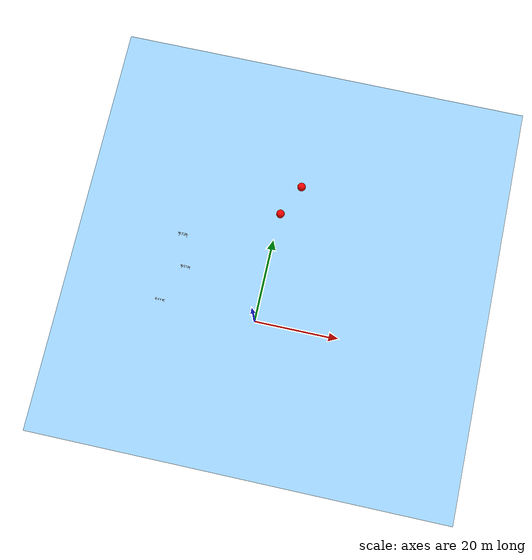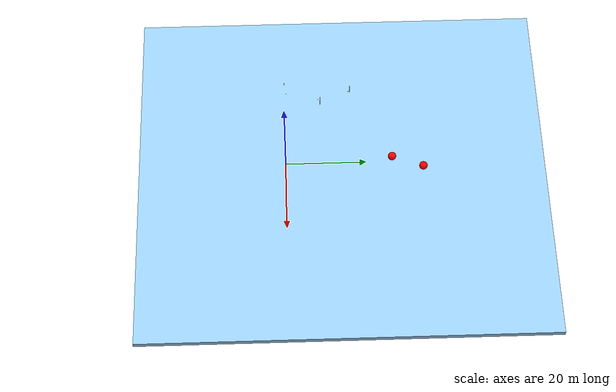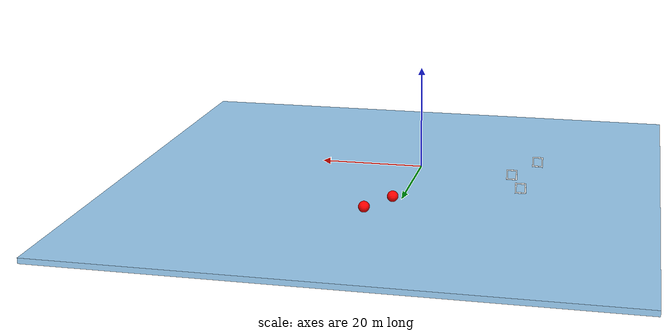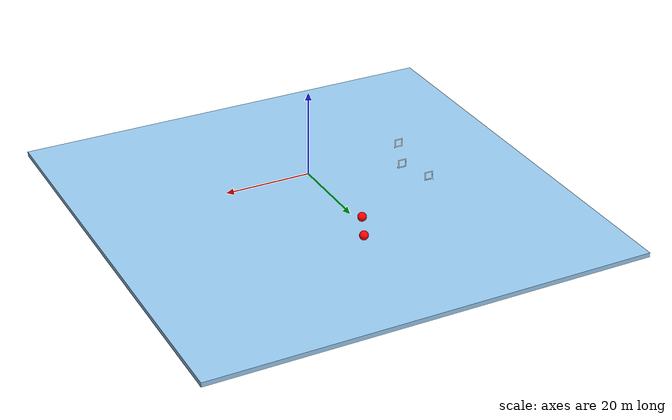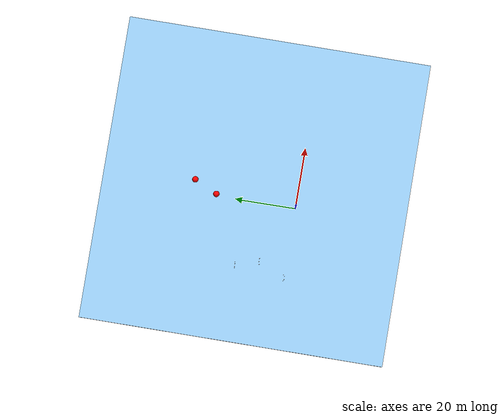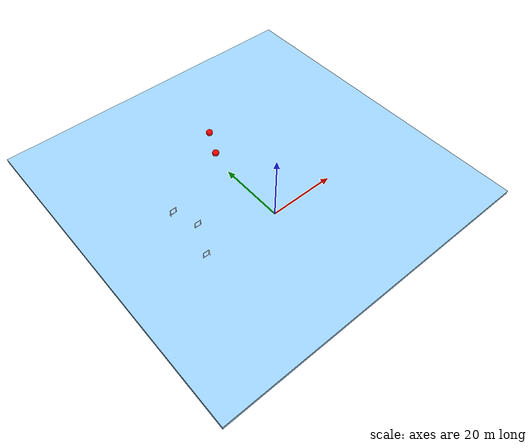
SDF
<sdf version="1.9">
 <world name="sitl">
  <light type="directional" name="sun">
   <pose>0 0 10 0 0 0</pose>
   <diffuse>0.9 0.9 0.9 1</diffuse>
   <specular>0.5 0.5 0.5 1</specular>
   <direction>-0.5 0.1 -0.9</direction>
  </light>
  <physics name="4ms" type="ignored">
   <max_step_size>0.004</max_step_size>
   <real_time_factor>1.0</real_time_factor>
   <dart><solver><solver_type>pgs</solver_type></solver><collision_detector>bullet</collision_detector></dart>
  </physics>
  <plugin name="gz::sim::systems::Physics" filename="ignition-gazebo-physics-system"/>
  <plugin name="gz::sim::systems::UserCommands" filename="ignition-gazebo-user-commands-system"/>
  <plugin name="gz::sim::systems::SceneBroadcaster" filename="ignition-gazebo-scene-broadcaster-system"/>
  <plugin name="gz::sim::systems::Contact" filename="ignition-gazebo-contact-system"/>
  <plugin name="ignition::gazebo::systems::Imu" filename="libignition-gazebo-imu-system.so"/>
  <plugin name="ignition::gazebo::systems::NavSat" filename="ignition-gazebo-navsat-system"/>
  <plugin filename="ignition-gazebo-sensors-system" name="gz::sim::systems::Sensors">
   <render_engine>ogre2</render_engine>
  </plugin>
  <plugin filename="ignition-gazebo-scene-broadcaster-system" name="gz::sim::systems::SceneBroadcaster">
   <state_hertz>125</state_hertz>
   <dynamic_pose_hertz>125</dynamic_pose_hertz>
  </plugin>
  <spherical_coordinates>
   <surface_model>EARTH_WGS84</surface_model>
   <world_frame_orientation>ENU</world_frame_orientation>
   <latitude_deg>0.0</latitude_deg>
   <longitude_deg>0.0</longitude_deg>
   <elevation>0</elevation>
   <heading_deg>0</heading_deg>
  </spherical_coordinates>
  <plugin filename="ignition-gazebo-air-pressure-system" name="gz::sim::systems::AirPressure"/>
  <light type="point" name="ceiling_light_1">
   <cast_shadows>false</cast_shadows>
   <pose>-9.07 6 9 0 0 0</pose>
   <diffuse>0.7 0.7 0.7 1</diffuse>
   <specular>0.1 0.1 0.1 1</specular>
   <attenuation>
    <range>25</range>
    <linear>0.08</linear>
    <constant>0.2</constant>
    <quadratic>0.001</quadratic>
   </attenuation>
  </light>
  <light type="point" name="ceiling_light_2">
   <cast_shadows>false</cast_shadows>
   <pose>9.07 -6 9 0 0 0</pose>
   <diffuse>0.7 0.7 0.7 1</diffuse>
   <specular>0.1 0.1 0.1 1</specular>
   <attenuation>
    <range>25</range>
    <linear>0.08</linear>
    <constant>0.2</constant>
    <quadratic>0.001</quadratic>
   </attenuation>
  </light>
  <light type="point" name="ceiling_light_3">
   <cast_shadows>false</cast_shadows>
   <pose>-9.07 -6 9 0 0 0</pose>
   <diffuse>0.7 0.7 0.7 1</diffuse>
   <specular>0.1 0.1 0.1 1</specular>
   <attenuation>
    <range>25</range>
    <linear>0.08</linear>
    <constant>0.2</constant>
    <quadratic>0.001</quadratic>
   </attenuation>
  </light>
  <light type="point" name="ceiling_light_4">
   <cast_shadows>false</cast_shadows>
   <pose>9.07 6 9 0 0 0</pose>
   <diffuse>0.7 0.7 0.7 1</diffuse>
   <specular>0.1 0.1 0.1 1</specular>
   <attenuation>
    <range>25</range>
    <linear>0.08</linear>
    <constant>0.2</constant>
    <quadratic>0.001</quadratic>
   </attenuation>
  </light>
  <include><uri>model://frame_low_full</uri><name>gate1</name><pose>-23 0 1.37 0 0 -3.14</pose></include>
  <include><uri>model://frame_low_full</uri><name>gate2</name><pose>-18.94 8.97 1.37 0 0 -3.14</pose></include>
  <include><uri>model://frame_low_full</uri><name>gate3</name><pose>-21.38 16.58 1.37 0 0 -3.14</pose></include>
  <include><uri>model://red_balloon</uri><name>red_balloon1</name><pose>0.44 26.27 2.6 0 0 0</pose></include>
  <include><uri>model://red_balloon</uri><name>red_balloon2</name><pose>4 33.8 3 0 0 0</pose></include>
  <model name="plane">
   <static>1</static>
   <pose>3.60000 13.90000 0.80000 0 0 0</pose>
   <link name="link">
    <collision name="collision"><geometry><box><size>100 100 1</size></box></geometry></collision>
    <visual name="visual">
     <geometry><box><size>100 100 1</size></box></geometry>
     <material>
      <ambient>0.6 0.8 0.95 1.0</ambient>
      <diffuse>0.6 0.8 0.95 1.0</diffuse>
      <specular>0.1 0.1 0.1 1.0</specular>
     </material>
    </visual>
   </link>
  </model>
  <plugin name="gz::sim" filename="dummy"/>
 </world>
</sdf>

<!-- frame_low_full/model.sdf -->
<sdf version="1.9">
  <model name="frame_low_full">
    <static>true</static>
    <pose>0 0 0.57 0 0 0</pose>
    <link name="base_link">
      <visual name="visual">
        <geometry>
          <mesh>
            <uri>./meshes/frame_low_full.dae</uri>
          </mesh>
        </geometry>
      </visual>
      <collision name="collision">
        <geometry>
          <mesh>
            <uri>./meshes/frame_low_full.dae</uri>
          </mesh>
        </geometry>
      </collision>
    </link>
  </model>
</sdf>

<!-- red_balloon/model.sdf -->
<sdf version="1.9">
  <model name='red_balloon'>
    <static>1</static>
    <pose>0 0 4 0 0 0</pose>
    <link name='link'>
      <collision name="collision">
        <geometry>
          <sphere>
            <radius>1</radius>
          </sphere>
        </geometry>
      </collision>
      <visual name="visual">
        <geometry>
          <sphere>
            <radius>1</radius>
          </sphere>
        </geometry>
        <material>
          <ambient>1 0 0 1</ambient>
          <diffuse>1 0 0 1</diffuse>
          <specular>0.1 0.1 0.1 1</specular>
        </material>
      </visual>
    </link>
  </model>
</sdf>
